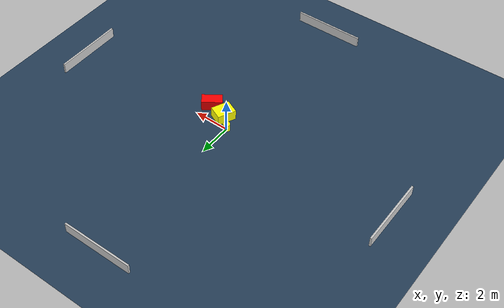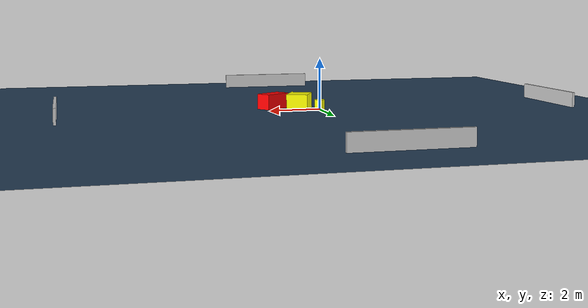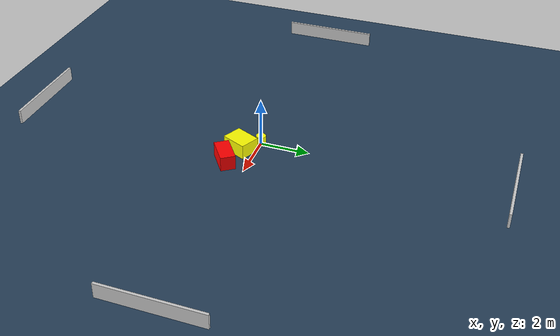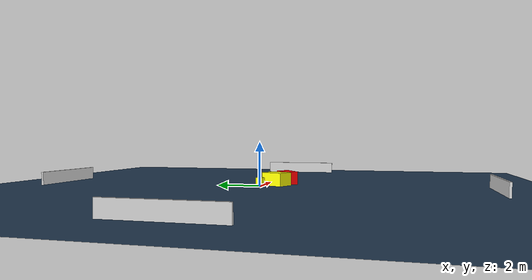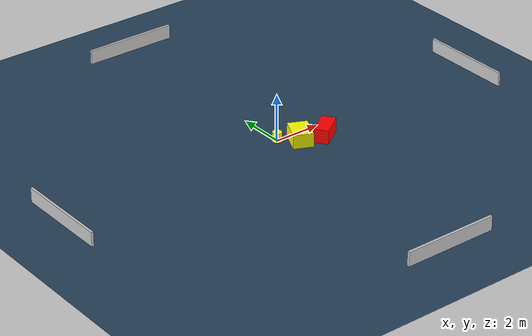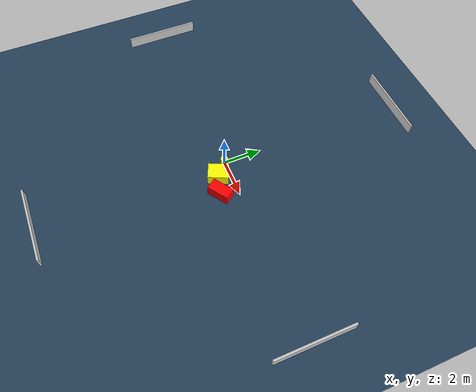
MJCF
<?xml version="1.0" ?>
<mujoco model="generated_environment">
  <option timestep="0.01" integrator="RK4" cone="elliptic"/>
  <default>
    <geom density="1"/>
  </default>
  <asset>
    <texture builtin="gradient" height="3072" name="skybox" rgb1="0.3 0.5 0.7" rgb2="0 0 0" type="skybox" width="512"/>
    <texture builtin="checker" height="300" name="groundplane" rgb1="0.2 0.3 0.4" rgb2="0.1 0.2 0.3" type="2d" width="300"/>
    <material name="groundplane" reflectance="0.2" texrepeat="5 5" texture="groundplane"/>
  </asset>
  <worldbody>
    <light dir="0 0 -1" directional="true" pos="0 0 1.5"/>
    <geom condim="3" friction="0.5 0.005 0.001" material="groundplane" name="floor" pos="0 0 0" size="0 0 0.05" type="plane"/>
    <body name="walls">
      <geom name="wall_1" condim="4" pos="-10.0 0.0 0.3" rgba="0.800000011920929 0.800000011920929 0.800000011920929 1.0" size="0.05 2.0 0.3" type="box"/>
      <geom name="wall_2" condim="4" pos="10.0 0.0 0.3" rgba="0.800000011920929 0.800000011920929 0.800000011920929 1.0" size="0.05 2.0 0.3" type="box"/>
      <geom name="wall_3" condim="4" pos="0.0 -10.0 0.3" rgba="0.800000011920929 0.800000011920929 0.800000011920929 1.0" size="2.0 0.05 0.3" type="box"/>
      <geom name="wall_4" condim="4" pos="0.0 10.0 0.3" rgba="0.800000011920929 0.800000011920929 0.800000011920929 1.0" size="2.0 0.05 0.3" type="box"/>
    </body>
    <body name="robot">
      <joint name="joint_x" type="slide" pos="0 0 0" axis="1 0 0"/>
      <joint name="joint_y" type="slide" pos="0 0 0" axis="0 1 0"/>
      <geom name="robot" type="cylinder" pos="0.0 0.0 0.2" size="0.2 0.2 0.0" mass="5.0" friction="1.0 0.005 0.0001" condim="4" rgba="1.0 1.0 0.0 1.0"/>
    </body>
    <body name="obstacle_1_movable">
      <geom name="obstacle_1_movable" condim="4" pos="0.6717846408336055 -0.6125775968464211 0.3" euler="0 0 155.0104826263" friction="0.0 0.005 0.001" rgba="1.0 1.0 0.0 1.0" size="0.4145975517370091 0.5292296110497414 0.3" type="box" mass="0.1"/>
      <joint type="free"/>
    </body>
    <body name="obstacle_2_static">
      <geom name="obstacle_2_static" condim="4" pos="1.6758310418068152 -0.9000036665016451 0.3" euler="0 0 35.110167590966185" friction="0.0 0.005 0.001" rgba="1.0 0.0 0.0 1.0" size="0.5730478984255145 0.3002380554833845 0.3" type="box"/>
    </body>
  </worldbody>
  <actuator>
    <motor name="actuator_x" joint="joint_x" gear="1" ctrlrange="-1 1"/>
    <motor name="actuator_y" joint="joint_y" gear="1" ctrlrange="-1 1"/>
  </actuator>
</mujoco>
